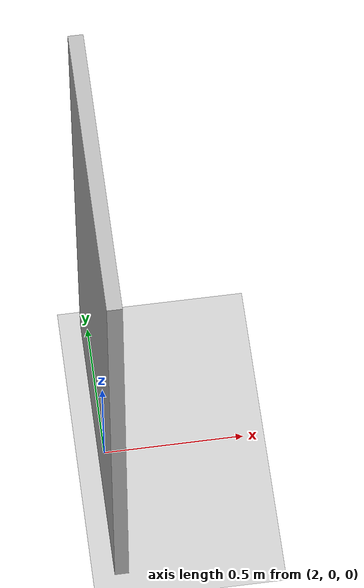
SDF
<?xml version="1.0" ?>
<sdf version="1.3">
  <world name="default">
    <physics type="ode">
      <gravity>0 0 -9.81</gravity>
      <update_rate>1000</update_rate>
      <ode>
        <solver>
          <type>quick</type>
          <dt>0.001</dt>
          <iters>20</iters>
          <sor>1.0</sor>
        </solver>
        <constraints>
          <cfm>0.0</cfm>
          <erp>0.2</erp>
          <contact_max_correcting_vel>100.0</contact_max_correcting_vel>
          <contact_surface_layer>0.0</contact_surface_layer>
        </constraints>
      </ode>
    </physics>
    <!-- A global light source -->
        <!-- Light Source -->
        <light type="directional" name="sun">
            <pose>-4 0 10 0 0 0</pose>
            <diffuse>1.0 1.0 1.0 1</diffuse>
            <specular>0 0 0 1</specular>
            <attenuation>
                <range>20</range>
                <linear>0.01</linear>
                <constant>0.8</constant>
                <quadratic>0.0</quadratic>
            </attenuation>
            <direction>0.0 0.2 -8.0</direction>
            <cast_shadows>true</cast_shadows>
        </light>
    <!-- A ground plane -->
    <include>
      <uri>model://ground_plane</uri>
    </include>
    <model name="wallWithREEMphoto_model">
      <pose>2 0 1.05 0 0 0</pose>
      <static>true</static>
      <link name="wallWithREEMphoto_body">
        <inertial>
          <mass>4.0</mass>
          <inertia>
            <ixx>1.0</ixx>
            <ixy>0.0</ixy>
            <ixz>0.0</ixz>
            <iyy>1.0</iyy>
            <iyz>0.0</iyz>
            <izz>1.0</izz>
          </inertia>
        </inertial>
        <collision name="collision">
          <geometry>
            <box>
              <size>0.05 1.0 2.0</size> <!-- Wall dimensions: thickness width length -->
            </box>
          </geometry>
        </collision>
        <visual name="visual">
          <geometry>
            <box>
              <size>0.05 1.0 2.0</size> <!-- Wall dimensions: thickness width length -->
            </box>
          </geometry>
          <material>
            <script>
              <uri>model://wall_with_reem_photo/material/scripts</uri>
              <uri>model://wall_with_reem_photo/material/textures</uri>
              <name>Custom/REEM_photo0</name>
            </script>
          </material>
        </visual>
      </link>
  </model>
 </world>
</sdf>
